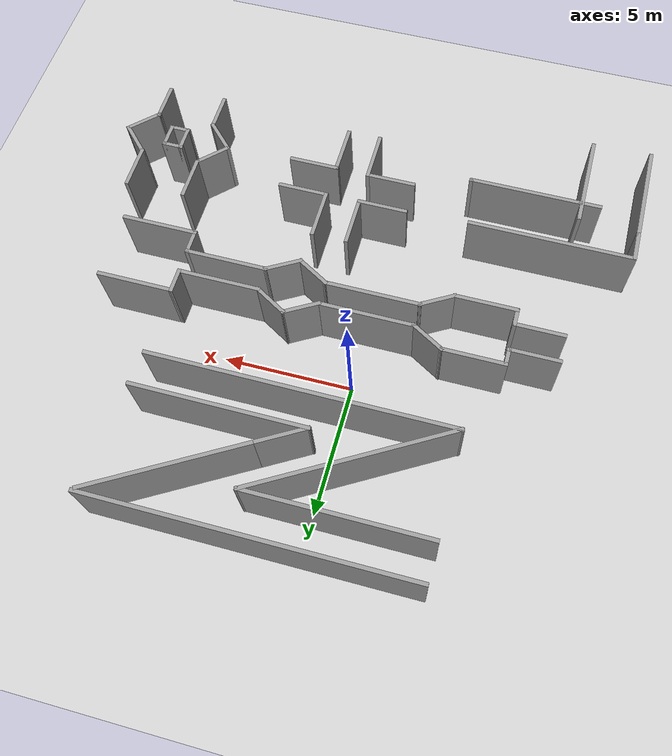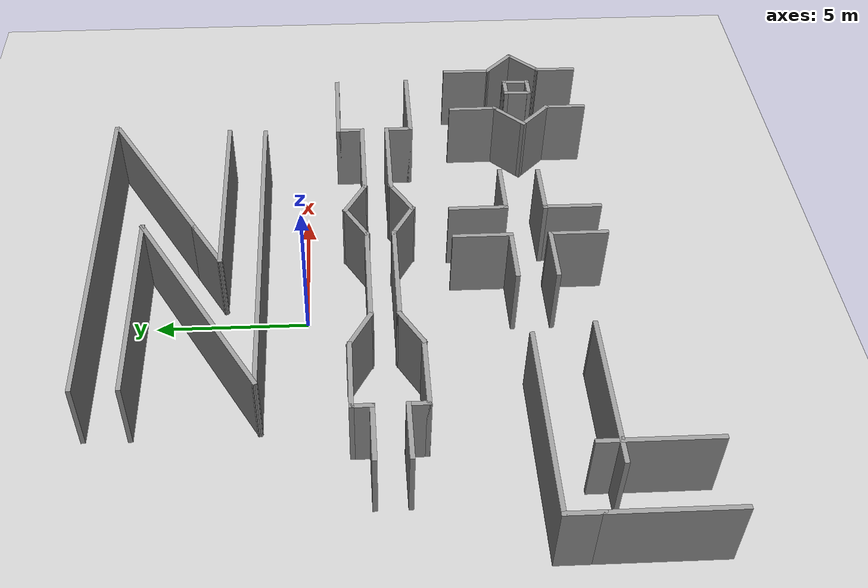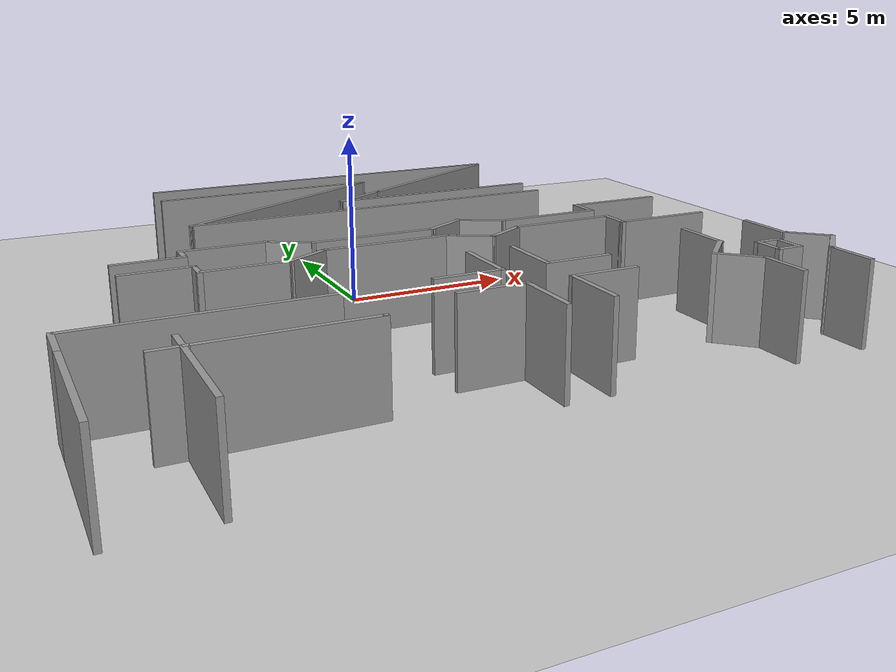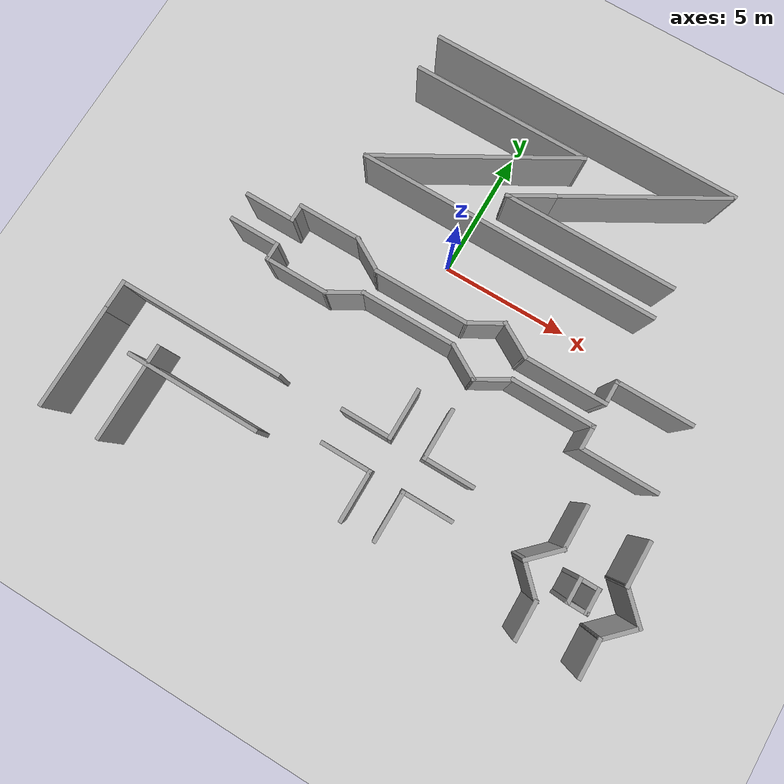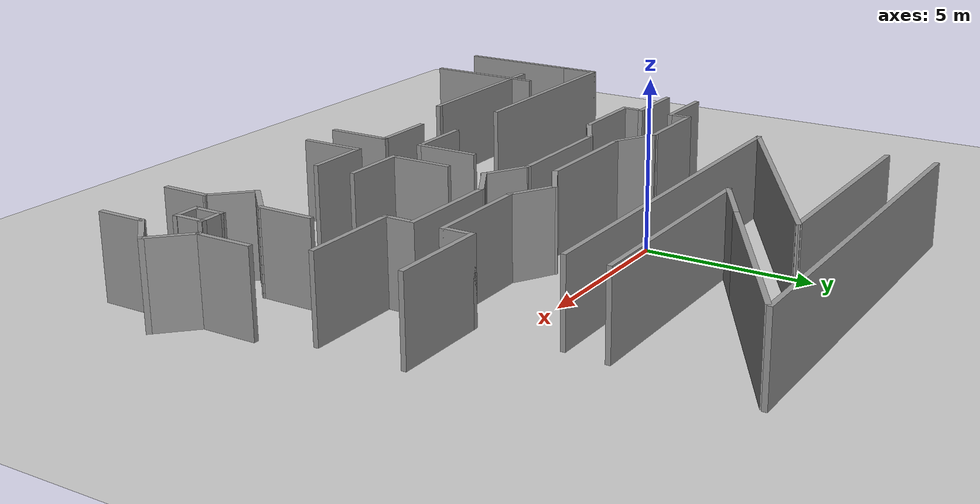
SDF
<sdf version="1.6">
 <world name="default">
  <light name="sun" type="directional">
   <pose>0 0 10 0 -0 0</pose>
   <diffuse>0.8 0.8 0.8 1</diffuse>
   <specular>0.2 0.2 0.2 1</specular>
   <attenuation>
    <range>1000</range>
    <constant>0.9</constant>
    <linear>0.01</linear>
    <quadratic>0.001</quadratic>
   </attenuation>
   <direction>-0.5 0.1 -0.9</direction>
  </light>
  <model name="ground_plane">
   <static>1</static>
   <link name="link">
    <collision name="collision">
     <geometry><plane><normal>0 0 1</normal><size>100 100</size></plane></geometry>
     <surface><friction><ode><mu>100</mu><mu2>50</mu2></ode></friction></surface>
    </collision>
    <visual name="visual">
     <cast_shadows>0</cast_shadows>
     <geometry><plane><normal>0 0 1</normal><size>100 100</size></plane></geometry>
     <material>
      <script><uri>file://media/materials/scripts/gazebo.material</uri><name>Gazebo/Grey</name></script>
     </material>
    </visual>
   </link>
  </model>
  <gravity>0 0 -9.8</gravity>
  <magnetic_field>6e-06 2.3e-05 -4.2e-05</magnetic_field>
  <atmosphere type="adiabatic"/>
  <physics name="default_physics" default="0" type="ode">
   <max_step_size>0.001</max_step_size>
   <real_time_factor>1</real_time_factor>
   <real_time_update_rate>1000</real_time_update_rate>
  </physics>
  <scene><ambient>0.4 0.4 0.4 1</ambient><background>0.7 0.7 0.7 1</background><shadows>1</shadows></scene>
  <audio><device>default</device></audio>
  <spherical_coordinates>
   <surface_model>EARTH_WGS84</surface_model>
   <latitude_deg>0</latitude_deg>
   <longitude_deg>0</longitude_deg>
   <elevation>0</elevation>
   <heading_deg>0</heading_deg>
  </spherical_coordinates>
  <model name="unit">
   <pose>1.16609 -2.50126 0 0 -0 0</pose>
   <link name="Wall_0">
    <collision name="Wall_0_Collision">
     <geometry><box><size>1.5 0.15 2.5</size></box></geometry>
     <pose>0 0 1.25 0 -0 0</pose>
    </collision>
    <visual name="Wall_0_Visual">
     <pose>0 0 1.25 0 -0 0</pose>
     <geometry><box><size>1.5 0.15 2.5</size></box></geometry>
     <material>
      <script><uri>file://media/materials/scripts/gazebo.material</uri><name>Gazebo/Grey</name></script>
      <ambient>1 1 1 1</ambient>
     </material>
     <meta><layer>0</layer></meta>
    </visual>
    <pose>-3.62153 0.823761 0 0 -0 -0.523599</pose>
   </link>
   <link name="Wall_1">
    <collision name="Wall_1_Collision">
     <geometry><box><size>3.75 0.15 2.5</size></box></geometry>
     <pose>0 0 1.25 0 -0 0</pose>
    </collision>
    <visual name="Wall_1_Visual">
     <pose>0 0 1.25 0 -0 0</pose>
     <geometry><box><size>3.75 0.15 2.5</size></box></geometry>
     <material>
      <script><uri>file://media/materials/scripts/gazebo.material</uri><name>Gazebo/Grey</name></script>
      <ambient>1 1 1 1</ambient>
     </material>
     <meta><layer>0</layer></meta>
    </visual>
    <pose>-1.23696 0.48626 0 0 -0 0</pose>
   </link>
   <link name="Wall_10">
    <collision name="Wall_10_Collision">
     <geometry><box><size>2.5 0.15 2.5</size></box></geometry>
     <pose>0 0 1.25 0 -0 0</pose>
    </collision>
    <visual name="Wall_10_Visual">
     <pose>0 0 1.25 0 -0 0</pose>
     <geometry><box><size>2.5 0.15 2.5</size></box></geometry>
     <material>
      <script><uri>file://media/materials/scripts/gazebo.material</uri><name>Gazebo/Grey</name></script>
      <ambient>1 1 1 1</ambient>
     </material>
     <meta><layer>0</layer></meta>
    </visual>
    <pose>-5.38109 1.16126 0 0 -0 3.14159</pose>
   </link>
   <link name="Wall_101">
    <collision name="Wall_101_Collision">
     <geometry><box><size>6.5 0.15 2.5</size></box></geometry>
     <pose>0 0 1.25 0 -0 0</pose>
    </collision>
    <visual name="Wall_101_Visual">
     <pose>0 0 1.25 0 -0 0</pose>
     <geometry><box><size>6.5 0.15 2.5</size></box></geometry>
     <material>
      <script><uri>file://media/materials/scripts/gazebo.material</uri><name>Gazebo/Grey</name></script>
      <ambient>1 1 1 1</ambient>
     </material>
     <meta><layer>0</layer></meta>
    </visual>
    <pose>-7.21656 -4.36583 0 0 -0 0</pose>
   </link>
   <link name="Wall_103">
    <collision name="Wall_103_Collision">
     <geometry><box><size>3.75 0.15 2.5</size></box></geometry>
     <pose>0 0 1.25 0 -0 0</pose>
    </collision>
    <visual name="Wall_103_Visual">
     <pose>0 0 1.25 0 -0 0</pose>
     <geometry><box><size>3.75 0.15 2.5</size></box></geometry>
     <material>
      <script><uri>file://media/materials/scripts/gazebo.material</uri><name>Gazebo/Grey</name></script>
      <ambient>1 1 1 1</ambient>
     </material>
     <meta><layer>0</layer></meta>
    </visual>
    <pose>-8.08427 -7.45298 0 0 -0 1.5708</pose>
   </link>
   <link name="Wall_106">
    <collision name="Wall_106_Collision">
     <geometry><box><size>5.25 0.15 2.5</size></box></geometry>
     <pose>0 0 1.25 0 -0 0</pose>
    </collision>
    <visual name="Wall_106_Visual">
     <pose>0 0 1.25 0 -0 0</pose>
     <geometry><box><size>5.25 0.15 2.5</size></box></geometry>
     <material>
      <script><uri>file://media/materials/scripts/gazebo.material</uri><name>Gazebo/Grey</name></script>
      <ambient>1 1 1 1</ambient>
     </material>
     <meta><layer>0</layer></meta>
    </visual>
    <pose>-6.23252 -6.34498 0 0 -0 3.14159</pose>
   </link>
   <link name="Wall_11">
    <collision name="Wall_11_Collision">
     <geometry><box><size>0.75 0.15 2.5</size></box></geometry>
     <pose>0 0 1.25 0 -0 0</pose>
    </collision>
    <visual name="Wall_11_Visual">
     <pose>0 0 1.25 0 -0 0</pose>
     <geometry><box><size>0.75 0.15 2.5</size></box></geometry>
     <material>
      <script><uri>file://media/materials/scripts/gazebo.material</uri><name>Gazebo/Grey</name></script>
      <ambient>1 1 1 1</ambient>
     </material>
     <meta><layer>0</layer></meta>
    </visual>
    <pose>-6.55609 0.861261 0 0 -0 -1.5708</pose>
   </link>
   <link name="Wall_110">
    <collision name="Wall_110_Collision">
     <geometry><box><size>1.75 0.15 2.5</size></box></geometry>
     <pose>0 0 1.25 0 -0 0</pose>
    </collision>
    <visual name="Wall_110_Visual">
     <pose>0 0 1.25 0 -0 0</pose>
     <geometry><box><size>1.75 0.15 2.5</size></box></geometry>
     <material>
      <script><uri>file://media/materials/scripts/gazebo.material</uri><name>Gazebo/Grey</name></script>
      <ambient>1 1 1 1</ambient>
     </material>
     <meta><layer>0</layer></meta>
    </visual>
    <pose>7.08436 -3.63217 0 0 -0 -1.5708</pose>
   </link>
   <link name="Wall_111">
    <collision name="Wall_111_Collision">
     <geometry><box><size>1.5 0.15 2.5</size></box></geometry>
     <pose>0 0 1.25 0 -0 0</pose>
    </collision>
    <visual name="Wall_111_Visual">
     <pose>0 0 1.25 0 -0 0</pose>
     <geometry><box><size>1.5 0.15 2.5</size></box></geometry>
     <material>
      <script><uri>file://media/materials/scripts/gazebo.material</uri><name>Gazebo/Grey</name></script>
      <ambient>1 1 1 1</ambient>
     </material>
     <meta><layer>0</layer></meta>
    </visual>
    <pose>6.60706 -4.90947 0 0 -0 -2.35619</pose>
   </link>
   <link name="Wall_112">
    <collision name="Wall_112_Collision">
     <geometry><box><size>1.5 0.15 2.5</size></box></geometry>
     <pose>0 0 1.25 0 -0 0</pose>
    </collision>
    <visual name="Wall_112_Visual">
     <pose>0 0 1.25 0 -0 0</pose>
     <geometry><box><size>1.5 0.15 2.5</size></box></geometry>
     <material>
      <script><uri>file://media/materials/scripts/gazebo.material</uri><name>Gazebo/Grey</name></script>
      <ambient>1 1 1 1</ambient>
     </material>
     <meta><layer>0</layer></meta>
    </visual>
    <pose>6.60706 -5.86406 0 0 -0 -0.785398</pose>
   </link>
   <link name="Wall_113">
    <collision name="Wall_113_Collision">
     <geometry><box><size>1.5 0.15 2.5</size></box></geometry>
     <pose>0 0 1.25 0 -0 0</pose>
    </collision>
    <visual name="Wall_113_Visual">
     <pose>0 0 1.25 0 -0 0</pose>
     <geometry><box><size>1.5 0.15 2.5</size></box></geometry>
     <material>
      <script><uri>file://media/materials/scripts/gazebo.material</uri><name>Gazebo/Grey</name></script>
      <ambient>1 1 1 1</ambient>
     </material>
     <meta><layer>0</layer></meta>
    </visual>
    <pose>7.08436 -7.01636 0 0 -0 -1.5708</pose>
   </link>
   <link name="Wall_115">
    <collision name="Wall_115_Collision">
     <geometry><box><size>1.75 0.15 2.5</size></box></geometry>
     <pose>0 0 1.25 0 -0 0</pose>
    </collision>
    <visual name="Wall_115_Visual">
     <pose>0 0 1.25 0 -0 0</pose>
     <geometry><box><size>1.75 0.15 2.5</size></box></geometry>
     <material>
      <script><uri>file://media/materials/scripts/gazebo.material</uri><name>Gazebo/Grey</name></script>
      <ambient>1 1 1 1</ambient>
     </material>
     <meta><layer>0</layer></meta>
    </visual>
    <pose>9.4059 -3.59692 0 0 -0 -1.5708</pose>
   </link>
   <link name="Wall_121">
    <collision name="Wall_121_Collision">
     <geometry><box><size>1.5 0.15 2.5</size></box></geometry>
     <pose>0 0 1.25 0 -0 0</pose>
    </collision>
    <visual name="Wall_121_Visual">
     <pose>0 0 1.25 0 -0 0</pose>
     <geometry><box><size>1.5 0.15 2.5</size></box></geometry>
     <material>
      <script><uri>file://media/materials/scripts/gazebo.material</uri><name>Gazebo/Grey</name></script>
      <ambient>1 1 1 1</ambient>
     </material>
     <meta><layer>0</layer></meta>
    </visual>
    <pose>9.88319 -4.87422 0 0 -0 -0.785398</pose>
   </link>
   <link name="Wall_123">
    <collision name="Wall_123_Collision">
     <geometry><box><size>1.5 0.15 2.5</size></box></geometry>
     <pose>0 0 1.25 0 -0 0</pose>
    </collision>
    <visual name="Wall_123_Visual">
     <pose>0 0 1.25 0 -0 0</pose>
     <geometry><box><size>1.5 0.15 2.5</size></box></geometry>
     <material>
      <script><uri>file://media/materials/scripts/gazebo.material</uri><name>Gazebo/Grey</name></script>
      <ambient>1 1 1 1</ambient>
     </material>
     <meta><layer>0</layer></meta>
    </visual>
    <pose>9.88319 -5.82881 0 0 -0 -2.35619</pose>
   </link>
   <link name="Wall_125">
    <collision name="Wall_125_Collision">
     <geometry><box><size>1.5 0.15 2.5</size></box></geometry>
     <pose>0 0 1.25 0 -0 0</pose>
    </collision>
    <visual name="Wall_125_Visual">
     <pose>0 0 1.25 0 -0 0</pose>
     <geometry><box><size>1.5 0.15 2.5</size></box></geometry>
     <material>
      <script><uri>file://media/materials/scripts/gazebo.material</uri><name>Gazebo/Grey</name></script>
      <ambient>1 1 1 1</ambient>
     </material>
     <meta><layer>0</layer></meta>
    </visual>
    <pose>9.4059 -6.98111 0 0 -0 -1.5708</pose>
   </link>
   <link name="Wall_128">
    <collision name="Wall_128_Collision">
     <geometry><box><size>0.856641 0.15 2.5</size></box></geometry>
     <pose>0 0 1.25 0 -0 0</pose>
    </collision>
    <visual name="Wall_128_Visual">
     <pose>0 0 1.25 0 -0 0</pose>
     <geometry><box><size>0.856641 0.15 2.5</size></box></geometry>
     <material>
      <script><uri>file://media/materials/scripts/gazebo.material</uri><name>Gazebo/Grey</name></script>
      <ambient>1 1 1 1</ambient>
     </material>
     <meta><layer>0</layer></meta>
    </visual>
    <pose>8.32302 -4.97213 0 0 -0 0</pose>
   </link>
   <link name="Wall_129">
    <collision name="Wall_129_Collision">
     <geometry><box><size>1 0.15 2.5</size></box></geometry>
     <pose>0 0 1.25 0 -0 0</pose>
    </collision>
    <visual name="Wall_129_Visual">
     <pose>0 0 1.25 0 -0 0</pose>
     <geometry><box><size>1 0.15 2.5</size></box></geometry>
     <material>
      <script><uri>file://media/materials/scripts/gazebo.material</uri><name>Gazebo/Grey</name></script>
      <ambient>1 1 1 1</ambient>
     </material>
     <meta><layer>0</layer></meta>
    </visual>
    <pose>8.6606 -5.39713 0 0 -0 -1.5708</pose>
   </link>
   <link name="Wall_13">
    <collision name="Wall_13_Collision">
     <geometry><box><size>2.5 0.15 2.5</size></box></geometry>
     <pose>0 0 1.25 0 -0 0</pose>
    </collision>
    <visual name="Wall_13_Visual">
     <pose>0 0 1.25 0 -0 0</pose>
     <geometry><box><size>2.5 0.15 2.5</size></box></geometry>
     <material>
      <script><uri>file://media/materials/scripts/gazebo.material</uri><name>Gazebo/Grey</name></script>
      <ambient>1 1 1 1</ambient>
     </material>
     <meta><layer>0</layer></meta>
    </visual>
    <pose>-5.37023 -1.08374 0 0 -0 3.14159</pose>
   </link>
   <link name="Wall_130">
    <collision name="Wall_130_Collision">
     <geometry><box><size>0.856641 0.15 2.5</size></box></geometry>
     <pose>0 0 1.25 0 -0 0</pose>
    </collision>
    <visual name="Wall_130_Visual">
     <pose>0 0 1.25 0 -0 0</pose>
     <geometry><box><size>0.856641 0.15 2.5</size></box></geometry>
     <material>
      <script><uri>file://media/materials/scripts/gazebo.material</uri><name>Gazebo/Grey</name></script>
      <ambient>1 1 1 1</ambient>
     </material>
     <meta><layer>0</layer></meta>
    </visual>
    <pose>8.32302 -5.82213 0 0 -0 3.14159</pose>
   </link>
   <link name="Wall_131">
    <collision name="Wall_131_Collision">
     <geometry><box><size>1 0.15 2.5</size></box></geometry>
     <pose>0 0 1.25 0 -0 0</pose>
    </collision>
    <visual name="Wall_131_Visual">
     <pose>0 0 1.25 0 -0 0</pose>
     <geometry><box><size>1 0.15 2.5</size></box></geometry>
     <material>
      <script><uri>file://media/materials/scripts/gazebo.material</uri><name>Gazebo/Grey</name></script>
      <ambient>1 1 1 1</ambient>
     </material>
     <meta><layer>0</layer></meta>
    </visual>
    <pose>7.98543 -5.39713 0 0 -0 1.5708</pose>
   </link>
   <link name="Wall_133">
    <collision name="Wall_133_Collision">
     <geometry><box><size>2 0.15 2.5</size></box></geometry>
     <pose>0 0 1.25 0 -0 0</pose>
    </collision>
    <visual name="Wall_133_Visual">
     <pose>0 0 1.25 0 -0 0</pose>
     <geometry><box><size>2 0.15 2.5</size></box></geometry>
     <material>
      <script><uri>file://media/materials/scripts/gazebo.material</uri><name>Gazebo/Grey</name></script>
      <ambient>1 1 1 1</ambient>
     </material>
     <meta><layer>0</layer></meta>
    </visual>
    <pose>-7.48109 0.56126 0 0 -0 3.14159</pose>
   </link>
   <link name="Wall_135">
    <collision name="Wall_135_Collision">
     <geometry><box><size>2 0.15 2.5</size></box></geometry>
     <pose>0 0 1.25 0 -0 0</pose>
    </collision>
    <visual name="Wall_135_Visual">
     <pose>0 0 1.25 0 -0 0</pose>
     <geometry><box><size>2 0.15 2.5</size></box></geometry>
     <material>
      <script><uri>file://media/materials/scripts/gazebo.material</uri><name>Gazebo/Grey</name></script>
      <ambient>1 1 1 1</ambient>
     </material>
     <meta><layer>0</layer></meta>
    </visual>
    <pose>-7.47023 -0.483739 0 0 -0 3.14159</pose>
   </link>
   <link name="Wall_14">
    <collision name="Wall_14_Collision">
     <geometry><box><size>0.75 0.15 2.5</size></box></geometry>
     <pose>0 0 1.25 0 -0 0</pose>
    </collision>
    <visual name="Wall_14_Visual">
     <pose>0 0 1.25 0 -0 0</pose>
     <geometry><box><size>0.75 0.15 2.5</size></box></geometry>
     <material>
      <script><uri>file://media/materials/scripts/gazebo.material</uri><name>Gazebo/Grey</name></script>
      <ambient>1 1 1 1</ambient>
     </material>
     <meta><layer>0</layer></meta>
    </visual>
    <pose>-6.54523 -0.78374 0 0 -0 1.5708</pose>
   </link>
   <link name="Wall_16">
    <collision name="Wall_16_Collision">
     <geometry><box><size>1.5 0.15 2.5</size></box></geometry>
     <pose>0 0 1.25 0 -0 0</pose>
    </collision>
    <visual name="Wall_16_Visual">
     <pose>0 0 1.25 0 -0 0</pose>
     <geometry><box><size>1.5 0.15 2.5</size></box></geometry>
     <material>
      <script><uri>file://media/materials/scripts/gazebo.material</uri><name>Gazebo/Grey</name></script>
      <ambient>1 1 1 1</ambient>
     </material>
     <meta><layer>0</layer></meta>
    </visual>
    <pose>2.31674 0.823761 0 0 -0 -0.523599</pose>
   </link>
   <link name="Wall_18">
    <collision name="Wall_18_Collision">
     <geometry><box><size>1.5 0.15 2.5</size></box></geometry>
     <pose>0 0 1.25 0 -0 0</pose>
    </collision>
    <visual name="Wall_18_Visual">
     <pose>0 0 1.25 0 -0 0</pose>
     <geometry><box><size>1.5 0.15 2.5</size></box></geometry>
     <material>
      <script><uri>file://media/materials/scripts/gazebo.material</uri><name>Gazebo/Grey</name></script>
      <ambient>1 1 1 1</ambient>
     </material>
     <meta><layer>0</layer></meta>
    </visual>
    <pose>2.32761 -0.746239 0 0 -0 0.523599</pose>
   </link>
   <link name="Wall_2">
    <collision name="Wall_2_Collision">
     <geometry><box><size>1.5 0.15 2.5</size></box></geometry>
     <pose>0 0 1.25 0 -0 0</pose>
    </collision>
    <visual name="Wall_2_Visual">
     <pose>0 0 1.25 0 -0 0</pose>
     <geometry><box><size>1.5 0.15 2.5</size></box></geometry>
     <material>
      <script><uri>file://media/materials/scripts/gazebo.material</uri><name>Gazebo/Grey</name></script>
      <ambient>1 1 1 1</ambient>
     </material>
     <meta><layer>0</layer></meta>
    </visual>
    <pose>1.14761 0.823761 0 0 -0 0.523599</pose>
   </link>
   <link name="Wall_20">
    <collision name="Wall_20_Collision">
     <geometry><box><size>3.25 0.15 2.5</size></box></geometry>
     <pose>0 0 1.25 0 -0 0</pose>
    </collision>
    <visual name="Wall_20_Visual">
     <pose>0 0 1.25 0 -0 0</pose>
     <geometry><box><size>3.25 0.15 2.5</size></box></geometry>
     <material>
      <script><uri>file://media/materials/scripts/gazebo.material</uri><name>Gazebo/Grey</name></script>
      <ambient>1 1 1 1</ambient>
     </material>
     <meta><layer>0</layer></meta>
    </visual>
    <pose>4.45131 0.48626 0 0 -0 0</pose>
   </link>
   <link name="Wall_22">
    <collision name="Wall_22_Collision">
     <geometry><box><size>3.25 0.15 2.5</size></box></geometry>
     <pose>0 0 1.25 0 -0 0</pose>
    </collision>
    <visual name="Wall_22_Visual">
     <pose>0 0 1.25 0 -0 0</pose>
     <geometry><box><size>3.25 0.15 2.5</size></box></geometry>
     <material>
      <script><uri>file://media/materials/scripts/gazebo.material</uri><name>Gazebo/Grey</name></script>
      <ambient>1 1 1 1</ambient>
     </material>
     <meta><layer>0</layer></meta>
    </visual>
    <pose>4.46218 -0.40874 0 0 -0 0</pose>
   </link>
   <link name="Wall_24">
    <collision name="Wall_24_Collision">
     <geometry><box><size>1 0.15 2.5</size></box></geometry>
     <pose>0 0 1.25 0 -0 0</pose>
    </collision>
    <visual name="Wall_24_Visual">
     <pose>0 0 1.25 0 -0 0</pose>
     <geometry><box><size>1 0.15 2.5</size></box></geometry>
     <material>
      <script><uri>file://media/materials/scripts/gazebo.material</uri><name>Gazebo/Grey</name></script>
      <ambient>1 1 1 1</ambient>
     </material>
     <meta><layer>0</layer></meta>
    </visual>
    <pose>6.00131 0.91126 0 0 -0 1.5708</pose>
   </link>
   <link name="Wall_25">
    <collision name="Wall_25_Collision">
     <geometry><box><size>3 0.15 2.5</size></box></geometry>
     <pose>0 0 1.25 0 -0 0</pose>
    </collision>
    <visual name="Wall_25_Visual">
     <pose>0 0 1.25 0 -0 0</pose>
     <geometry><box><size>3 0.15 2.5</size></box></geometry>
     <material>
      <script><uri>file://media/materials/scripts/gazebo.material</uri><name>Gazebo/Grey</name></script>
      <ambient>1 1 1 1</ambient>
     </material>
     <meta><layer>0</layer></meta>
    </visual>
    <pose>7.42631 1.33626 0 0 -0 0</pose>
   </link>
   <link name="Wall_27">
    <collision name="Wall_27_Collision">
     <geometry><box><size>1 0.15 2.5</size></box></geometry>
     <pose>0 0 1.25 0 -0 0</pose>
    </collision>
    <visual name="Wall_27_Visual">
     <pose>0 0 1.25 0 -0 0</pose>
     <geometry><box><size>1 0.15 2.5</size></box></geometry>
     <material>
      <script><uri>file://media/materials/scripts/gazebo.material</uri><name>Gazebo/Grey</name></script>
      <ambient>1 1 1 1</ambient>
     </material>
     <meta><layer>0</layer></meta>
    </visual>
    <pose>6.01218 -0.83374 0 0 -0 -1.5708</pose>
   </link>
   <link name="Wall_28">
    <collision name="Wall_28_Collision">
     <geometry><box><size>3 0.15 2.5</size></box></geometry>
     <pose>0 0 1.25 0 -0 0</pose>
    </collision>
    <visual name="Wall_28_Visual">
     <pose>0 0 1.25 0 -0 0</pose>
     <geometry><box><size>3 0.15 2.5</size></box></geometry>
     <material>
      <script><uri>file://media/materials/scripts/gazebo.material</uri><name>Gazebo/Grey</name></script>
      <ambient>1 1 1 1</ambient>
     </material>
     <meta><layer>0</layer></meta>
    </visual>
    <pose>7.43718 -1.25874 0 0 -0 0</pose>
   </link>
   <link name="Wall_30">
    <collision name="Wall_30_Collision">
     <geometry><box><size>7 0.15 2.5</size></box></geometry>
     <pose>0 0 1.25 0 -0 0</pose>
    </collision>
    <visual name="Wall_30_Visual">
     <pose>0 0 1.25 0 -0 0</pose>
     <geometry><box><size>7 0.15 2.5</size></box></geometry>
     <material>
      <script><uri>file://media/materials/scripts/gazebo.material</uri><name>Gazebo/Grey</name></script>
      <ambient>1 1 1 1</ambient>
     </material>
     <meta><layer>0</layer></meta>
    </visual>
    <pose>-2.20954 7.87966 0 0 -0 0</pose>
   </link>
   <link name="Wall_31">
    <collision name="Wall_31_Collision">
     <geometry><box><size>8 0.15 2.5</size></box></geometry>
     <pose>0 0 1.25 0 -0 0</pose>
    </collision>
    <visual name="Wall_31_Visual">
     <pose>0 0 1.25 0 -0 0</pose>
     <geometry><box><size>8 0.15 2.5</size></box></geometry>
     <material>
      <script><uri>file://media/materials/scripts/gazebo.material</uri><name>Gazebo/Grey</name></script>
      <ambient>1 1 1 1</ambient>
     </material>
     <meta><layer>0</layer></meta>
    </visual>
    <pose>-2.18369 5.91716 0 0 -0 -2.61799</pose>
   </link>
   <link name="Wall_32">
    <collision name="Wall_32_Collision">
     <geometry><box><size>11.75 0.15 2.5</size></box></geometry>
     <pose>0 0 1.25 0 -0 0</pose>
    </collision>
    <visual name="Wall_32_Visual">
     <pose>0 0 1.25 0 -0 0</pose>
     <geometry><box><size>11.75 0.15 2.5</size></box></geometry>
     <material>
      <script><uri>file://media/materials/scripts/gazebo.material</uri><name>Gazebo/Grey</name></script>
      <ambient>1 1 1 1</ambient>
     </material>
     <meta><layer>0</layer></meta>
    </visual>
    <pose>0.21716 3.95466 0 0 -0 0</pose>
   </link>
   <link name="Wall_34">
    <collision name="Wall_34_Collision">
     <geometry><box><size>12.25 0.15 2.5</size></box></geometry>
     <pose>0 0 1.25 0 -0 0</pose>
    </collision>
    <visual name="Wall_34_Visual">
     <pose>0 0 1.25 0 -0 0</pose>
     <geometry><box><size>12.25 0.15 2.5</size></box></geometry>
     <material>
      <script><uri>file://media/materials/scripts/gazebo.material</uri><name>Gazebo/Grey</name></script>
      <ambient>1 1 1 1</ambient>
     </material>
     <meta><layer>0</layer></meta>
    </visual>
    <pose>0.435687 9.31583 0 0 -0 0</pose>
   </link>
   <link name="Wall_36">
    <collision name="Wall_36_Collision">
     <geometry><box><size>6.25 0.15 2.5</size></box></geometry>
     <pose>0 0 1.25 0 -0 0</pose>
    </collision>
    <visual name="Wall_36_Visual">
     <pose>0 0 1.25 0 -0 0</pose>
     <geometry><box><size>6.25 0.15 2.5</size></box></geometry>
     <material>
      <script><uri>file://media/materials/scripts/gazebo.material</uri><name>Gazebo/Grey</name></script>
      <ambient>1 1 1 1</ambient>
     </material>
     <meta><layer>0</layer></meta>
    </visual>
    <pose>3.76292 7.68529 0 0 -0 0.523599</pose>
   </link>
   <link name="Wall_38">
    <collision name="Wall_38_Collision">
     <geometry><box><size>2 0.15 2.5</size></box></geometry>
     <pose>0 0 1.25 0 -0 0</pose>
    </collision>
    <visual name="Wall_38_Visual">
     <pose>0 0 1.25 0 -0 0</pose>
     <geometry><box><size>2 0.15 2.5</size></box></geometry>
     <material>
      <script><uri>file://media/materials/scripts/gazebo.material</uri><name>Gazebo/Grey</name></script>
      <ambient>1 1 1 1</ambient>
     </material>
     <meta><layer>0</layer></meta>
    </visual>
    <pose>0.320467 5.69779 0 0 -0 -2.61799</pose>
   </link>
   <link name="Wall_4">
    <collision name="Wall_4_Collision">
     <geometry><box><size>3.75 0.15 2.5</size></box></geometry>
     <pose>0 0 1.25 0 -0 0</pose>
    </collision>
    <visual name="Wall_4_Visual">
     <pose>0 0 1.25 0 -0 0</pose>
     <geometry><box><size>3.75 0.15 2.5</size></box></geometry>
     <material>
      <script><uri>file://media/materials/scripts/gazebo.material</uri><name>Gazebo/Grey</name></script>
      <ambient>1 1 1 1</ambient>
     </material>
     <meta><layer>0</layer></meta>
    </visual>
    <pose>-1.22609 -0.40874 0 0 -0 0</pose>
   </link>
   <link name="Wall_40">
    <collision name="Wall_40_Collision">
     <geometry><box><size>6.75 0.15 2.5</size></box></geometry>
     <pose>0 0 1.25 0 -0 0</pose>
    </collision>
    <visual name="Wall_40_Visual">
     <pose>0 0 1.25 0 -0 0</pose>
     <geometry><box><size>6.75 0.15 2.5</size></box></geometry>
     <material>
      <script><uri>file://media/materials/scripts/gazebo.material</uri><name>Gazebo/Grey</name></script>
      <ambient>1 1 1 1</ambient>
     </material>
     <meta><layer>0</layer></meta>
    </visual>
    <pose>2.81939 5.23529 0 0 -0 0</pose>
   </link>
   <link name="Wall_45">
    <collision name="Wall_45_Collision">
     <geometry><box><size>2 0.15 2.5</size></box></geometry>
     <pose>0 0 1.25 0 -0 0</pose>
    </collision>
    <visual name="Wall_45_Visual">
     <pose>0 0 1.25 0 -0 0</pose>
     <geometry><box><size>2 0.15 2.5</size></box></geometry>
     <material>
      <script><uri>file://media/materials/scripts/gazebo.material</uri><name>Gazebo/Grey</name></script>
      <ambient>1 1 1 1</ambient>
     </material>
     <meta><layer>0</layer></meta>
    </visual>
    <pose>0.329203 -3.31406 0 0 -0 -1.5708</pose>
   </link>
   <link name="Wall_46">
    <collision name="Wall_46_Collision">
     <geometry><box><size>2 0.15 2.5</size></box></geometry>
     <pose>0 0 1.25 0 -0 0</pose>
    </collision>
    <visual name="Wall_46_Visual">
     <pose>0 0 1.25 0 -0 0</pose>
     <geometry><box><size>2 0.15 2.5</size></box></geometry>
     <material>
      <script><uri>file://media/materials/scripts/gazebo.material</uri><name>Gazebo/Grey</name></script>
      <ambient>1 1 1 1</ambient>
     </material>
     <meta><layer>0</layer></meta>
    </visual>
    <pose>-0.595797 -4.23905 0 0 -0 3.14159</pose>
   </link>
   <link name="Wall_48">
    <collision name="Wall_48_Collision">
     <geometry><box><size>2 0.15 2.5</size></box></geometry>
     <pose>0 0 1.25 0 -0 0</pose>
    </collision>
    <visual name="Wall_48_Visual">
     <pose>0 0 1.25 0 -0 0</pose>
     <geometry><box><size>2 0.15 2.5</size></box></geometry>
     <material>
      <script><uri>file://media/materials/scripts/gazebo.material</uri><name>Gazebo/Grey</name></script>
      <ambient>1 1 1 1</ambient>
     </material>
     <meta><layer>0</layer></meta>
    </visual>
    <pose>0.329203 -6.46736 0 0 -0 -1.5708</pose>
   </link>
   <link name="Wall_50">
    <collision name="Wall_50_Collision">
     <geometry><box><size>2 0.15 2.5</size></box></geometry>
     <pose>0 0 1.25 0 -0 0</pose>
    </collision>
    <visual name="Wall_50_Visual">
     <pose>0 0 1.25 0 -0 0</pose>
     <geometry><box><size>2 0.15 2.5</size></box></geometry>
     <material>
      <script><uri>file://media/materials/scripts/gazebo.material</uri><name>Gazebo/Grey</name></script>
      <ambient>1 1 1 1</ambient>
     </material>
     <meta><layer>0</layer></meta>
    </visual>
    <pose>-0.595797 -5.54236 0 0 -0 3.14159</pose>
   </link>
   <link name="Wall_52">
    <collision name="Wall_52_Collision">
     <geometry><box><size>2 0.15 2.5</size></box></geometry>
     <pose>0 0 1.25 0 -0 0</pose>
    </collision>
    <visual name="Wall_52_Visual">
     <pose>0 0 1.25 0 -0 0</pose>
     <geometry><box><size>2 0.15 2.5</size></box></geometry>
     <material>
      <script><uri>file://media/materials/scripts/gazebo.material</uri><name>Gazebo/Grey</name></script>
      <ambient>1 1 1 1</ambient>
     </material>
     <meta><layer>0</layer></meta>
    </visual>
    <pose>1.66744 -3.29867 0 0 -0 -1.5708</pose>
   </link>
   <link name="Wall_54">
    <collision name="Wall_54_Collision">
     <geometry><box><size>2 0.15 2.5</size></box></geometry>
     <pose>0 0 1.25 0 -0 0</pose>
    </collision>
    <visual name="Wall_54_Visual">
     <pose>0 0 1.25 0 -0 0</pose>
     <geometry><box><size>2 0.15 2.5</size></box></geometry>
     <material>
      <script><uri>file://media/materials/scripts/gazebo.material</uri><name>Gazebo/Grey</name></script>
      <ambient>1 1 1 1</ambient>
     </material>
     <meta><layer>0</layer></meta>
    </visual>
    <pose>2.59244 -4.22367 0 0 -0 0</pose>
   </link>
   <link name="Wall_56">
    <collision name="Wall_56_Collision">
     <geometry><box><size>1.96654 0.15 2.5</size></box></geometry>
     <pose>0 0 1.25 0 -0 0</pose>
    </collision>
    <visual name="Wall_56_Visual">
     <pose>0 0 1.25 0 -0 0</pose>
     <geometry><box><size>1.96654 0.15 2.5</size></box></geometry>
     <material>
      <script><uri>file://media/materials/scripts/gazebo.material</uri><name>Gazebo/Grey</name></script>
      <ambient>1 1 1 1</ambient>
     </material>
     <meta><layer>0</layer></meta>
    </visual>
    <pose>1.62396 -6.46871 0 0 -0 -1.57373</pose>
   </link>
   <link name="Wall_58">
    <collision name="Wall_58_Collision">
     <geometry><box><size>2 0.15 2.5</size></box></geometry>
     <pose>0 0 1.25 0 -0 0</pose>
    </collision>
    <visual name="Wall_58_Visual">
     <pose>0 0 1.25 0 -0 0</pose>
     <geometry><box><size>2 0.15 2.5</size></box></geometry>
     <material>
      <script><uri>file://media/materials/scripts/gazebo.material</uri><name>Gazebo/Grey</name></script>
      <ambient>1 1 1 1</ambient>
     </material>
     <meta><layer>0</layer></meta>
    </visual>
    <pose>2.53794 -5.54677 0 0 -0 0</pose>
   </link>
   <link name="Wall_6">
    <collision name="Wall_6_Collision">
     <geometry><box><size>1.5 0.15 2.5</size></box></geometry>
     <pose>0 0 1.25 0 -0 0</pose>
    </collision>
    <visual name="Wall_6_Visual">
     <pose>0 0 1.25 0 -0 0</pose>
     <geometry><box><size>1.5 0.15 2.5</size></box></geometry>
     <material>
      <script><uri>file://media/materials/scripts/gazebo.material</uri><name>Gazebo/Grey</name></script>
      <ambient>1 1 1 1</ambient>
     </material>
     <meta><layer>0</layer></meta>
    </visual>
    <pose>-3.61066 -0.746239 0 0 -0 -2.61799</pose>
   </link>
   <link name="Wall_78">
    <collision name="Wall_78_Collision">
     <geometry><box><size>0.15 0.15 2.5</size></box></geometry>
     <pose>0 0 1.25 0 -0 0</pose>
    </collision>
    <visual name="Wall_78_Visual">
     <pose>0 0 1.25 0 -0 0</pose>
     <geometry><box><size>0.15 0.15 2.5</size></box></geometry>
     <material>
      <script><uri>file://media/materials/scripts/gazebo.material</uri><name>Gazebo/Grey</name></script>
      <ambient>1 1 1 1</ambient>
     </material>
     <meta><layer>0</layer></meta>
    </visual>
    <pose>-8.03252 -6.34498 0 0 -0 0</pose>
   </link>
   <link name="Wall_8">
    <collision name="Wall_8_Collision">
     <geometry><box><size>1.5 0.15 2.5</size></box></geometry>
     <pose>0 0 1.25 0 -0 0</pose>
    </collision>
    <visual name="Wall_8_Visual">
     <pose>0 0 1.25 0 -0 0</pose>
     <geometry><box><size>1.5 0.15 2.5</size></box></geometry>
     <material>
      <script><uri>file://media/materials/scripts/gazebo.material</uri><name>Gazebo/Grey</name></script>
      <ambient>1 1 1 1</ambient>
     </material>
     <meta><layer>0</layer></meta>
    </visual>
    <pose>1.15847 -0.746239 0 0 -0 -0.523599</pose>
   </link>
   <link name="Wall_83">
    <collision name="Wall_83_Collision">
     <geometry><box><size>0.15 0.15 2.5</size></box></geometry>
     <pose>0 0 1.25 0 -0 0</pose>
    </collision>
    <visual name="Wall_83_Visual">
     <pose>0 0 1.25 0 -0 0</pose>
     <geometry><box><size>0.15 0.15 2.5</size></box></geometry>
     <material>
      <script><uri>file://media/materials/scripts/gazebo.material</uri><name>Gazebo/Grey</name></script>
      <ambient>1 1 1 1</ambient>
     </material>
     <meta><layer>0</layer></meta>
    </visual>
    <pose>-3.68251 -6.34498 0 0 -0 0</pose>
   </link>
   <link name="Wall_95">
    <collision name="Wall_95_Collision">
     <geometry><box><size>4 0.15 2.5</size></box></geometry>
     <pose>0 0 1.25 0 -0 0</pose>
    </collision>
    <visual name="Wall_95_Visual">
     <pose>0 0 1.25 0 -0 0</pose>
     <geometry><box><size>4 0.15 2.5</size></box></geometry>
     <material>
      <script><uri>file://media/materials/scripts/gazebo.material</uri><name>Gazebo/Grey</name></script>
      <ambient>1 1 1 1</ambient>
     </material>
     <meta><layer>0</layer></meta>
    </visual>
    <pose>-10.3916 -7.39083 0 0 -0 1.5708</pose>
   </link>
   <link name="Wall_99">
    <collision name="Wall_99_Collision">
     <geometry><box><size>1.25 0.15 2.5</size></box></geometry>
     <pose>0 0 1.25 0 -0 0</pose>
    </collision>
    <visual name="Wall_99_Visual">
     <pose>0 0 1.25 0 -0 0</pose>
     <geometry><box><size>1.25 0.15 2.5</size></box></geometry>
     <material>
      <script><uri>file://media/materials/scripts/gazebo.material</uri><name>Gazebo/Grey</name></script>
      <ambient>1 1 1 1</ambient>
     </material>
     <meta><layer>0</layer></meta>
    </visual>
    <pose>-10.3916 -4.91583 0 0 -0 1.5708</pose>
   </link>
   <static>1</static>
  </model>
 </world>
</sdf>
